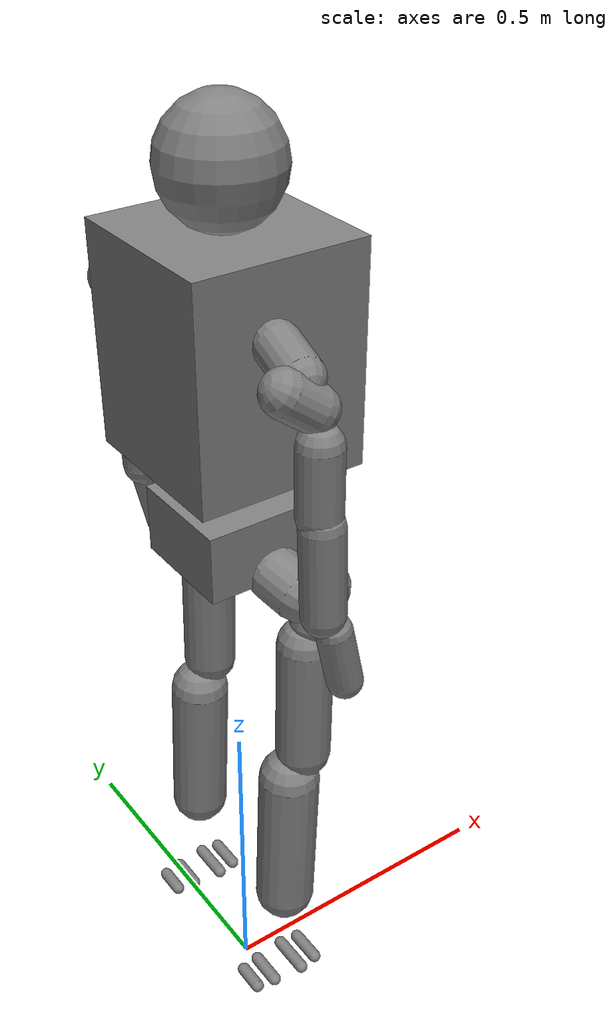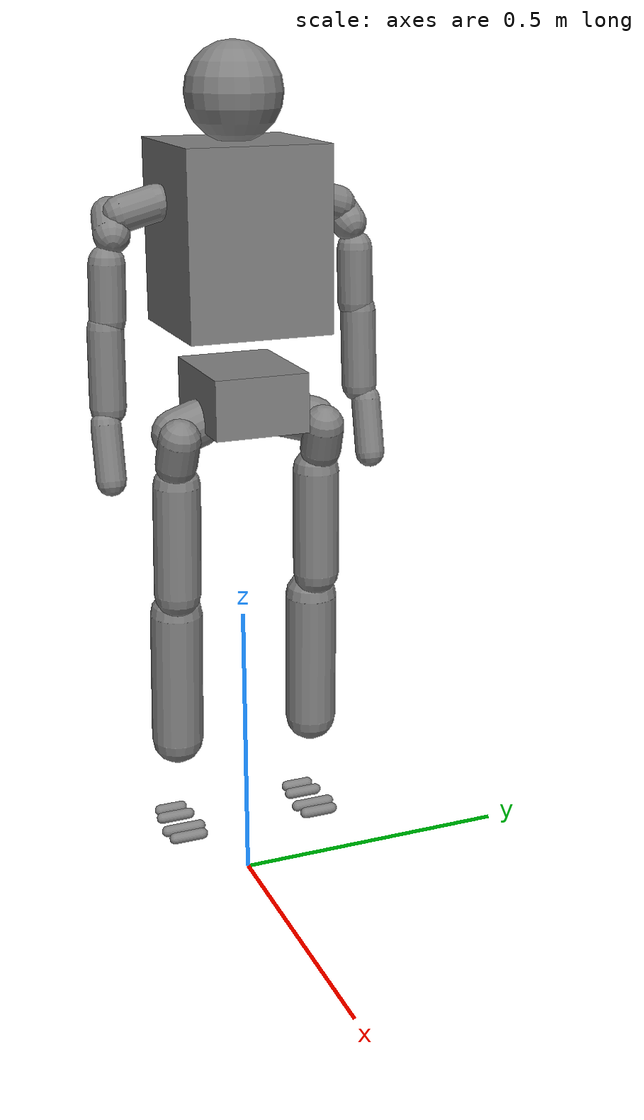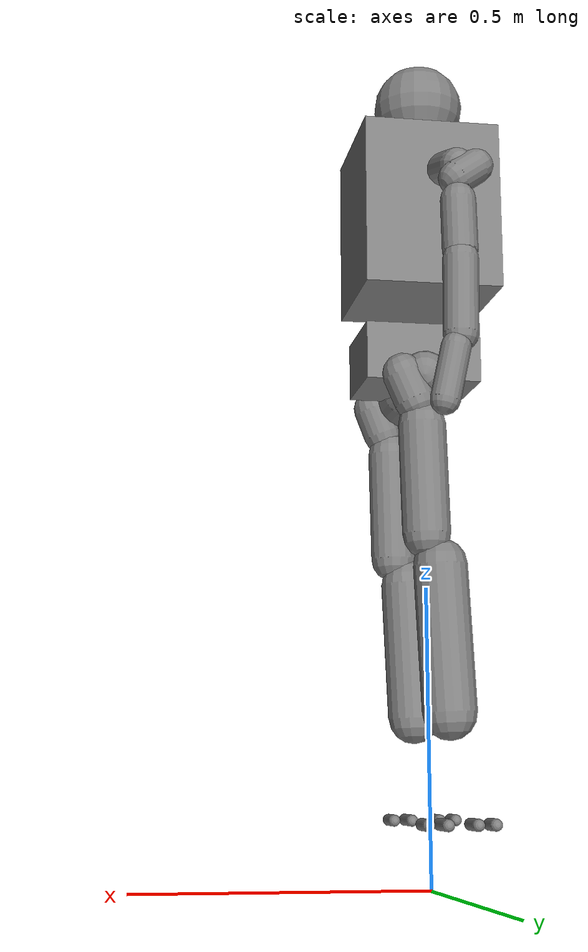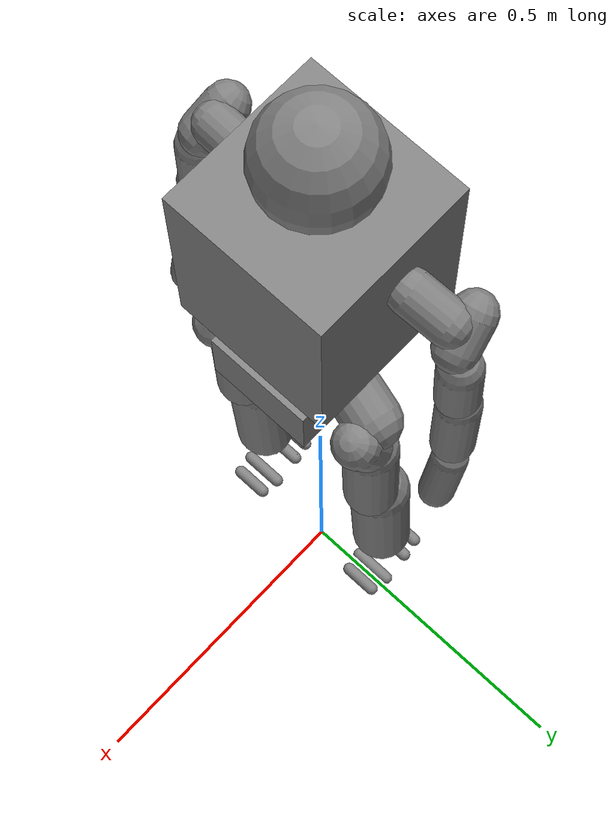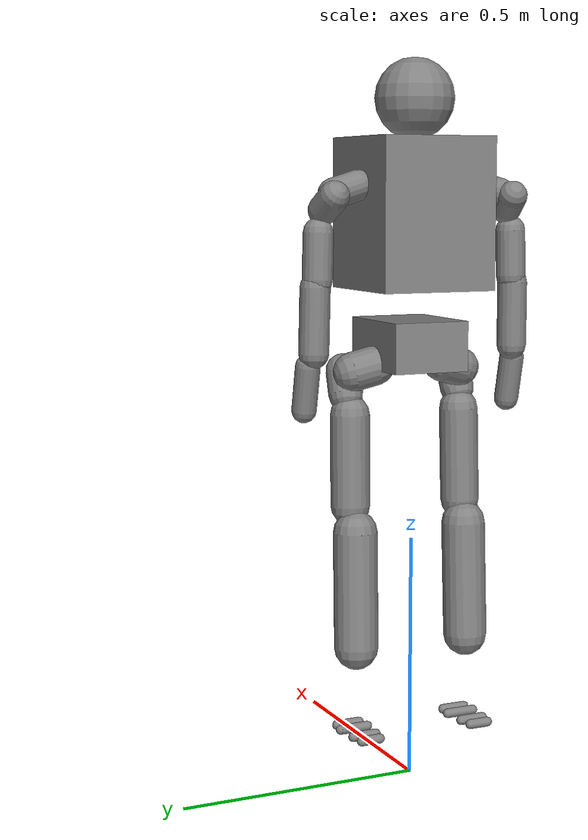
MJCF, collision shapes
<mujoco model="pm01">
  <compiler angle="radian" meshdir="assets"/>
  <default>
    <joint damping="0.05" armature="0.01" frictionloss="0.2"/>
  </default>

  <default>
    <default class="pm01">
      <default class="visual">
        <geom type="mesh" density="0" contype="0" conaffinity="0" group="2"/>
      </default>
      <default class="collision">
        <geom type="capsule" priority="1" condim="6" group="3"/>
        <default class="foot_capsule">
          <geom size="0.01"/>
        </default>
      </default>
      <site rgba="1 0 0 1" group="5"/>
    </default>
  </default>

  <asset>
    <mesh name="link_base" file="link_base.stl"/>
    <mesh name="link_hip_pitch_l" file="link_hip_pitch_l.stl"/>
    <mesh name="link_hip_roll_l" file="link_hip_roll_l.stl"/>
    <mesh name="link_hip_yaw_l" file="link_hip_yaw_l.stl"/>
    <mesh name="link_knee_pitch_l" file="link_knee_pitch_l.stl"/>
    <mesh name="link_ankle_pitch_l" file="link_ankle_pitch_l.stl"/>
    <mesh name="link_ankle_roll_l" file="link_ankle_roll_l.stl"/>
    <mesh name="link_hip_pitch_r" file="link_hip_pitch_r.stl"/>
    <mesh name="link_hip_roll_r" file="link_hip_roll_r.stl"/>
    <mesh name="link_hip_yaw_r" file="link_hip_yaw_r.stl"/>
    <mesh name="link_knee_pitch_r" file="link_knee_pitch_r.stl"/>
    <mesh name="link_ankle_pitch_r" file="link_ankle_pitch_r.stl"/>
    <mesh name="link_ankle_roll_r" file="link_ankle_roll_r.stl"/>
    <mesh name="link_torso_yaw" file="link_torso_yaw.stl"/>
    <mesh name="link_shoulder_pitch_l" file="link_shoulder_pitch_l.stl"/>
    <mesh name="link_shoulder_roll_l" file="link_shoulder_roll_l.stl"/>
    <mesh name="link_shoulder_yaw_l" file="link_shoulder_yaw_l.stl"/>
    <mesh name="link_elbow_pitch_l" file="link_elbow_pitch_l.stl"/>
    <mesh name="link_elbow_yaw_l" file="link_elbow_yaw_l.stl"/>
    <mesh name="link_shoulder_pitch_r" file="link_shoulder_pitch_r.stl"/>
    <mesh name="link_shoulder_roll_r" file="link_shoulder_roll_r.stl"/>
    <mesh name="link_shoulder_yaw_r" file="link_shoulder_yaw_r.stl"/>
    <mesh name="link_elbow_pitch_r" file="link_elbow_pitch_r.stl"/>
    <mesh name="link_elbow_yaw_r" file="link_elbow_yaw_r.stl"/>
    <mesh name="link_head_yaw" file="link_head_yaw.stl"/>
  </asset>

  <worldbody>
    <body name="link_base" pos="0 0 0.92" childclass="pm01">
      <inertial pos="0.01525750 -0.00001621 -0.02333111" mass="4.08640035"
                fullinertia="0.02021593 0.01531282 0.01216285 -0.00000120 -0.00037784 -0.00000295"/>
      <joint name="floating_base_joint" type="free" limited="false" actuatorfrclimited="false"/>
      <geom class="visual" rgba="0.75294 0.75294 0.75294 1" mesh="link_base"/>
      <geom name="link_base_collision" class="collision" type="box" size="0.1 0.08 0.05" pos="0.015 0 -0.02"/>
      <site name="imu" size="0.01" pos="0 0 0"/>

      <!-- ==================== LEFT LEG ==================== -->
      <body name="link_hip_pitch_l" pos="0.01541 0.076141 -0.061208">
        <inertial pos="0.01010860 0.04524604 -0.01196488" mass="1.68628239"
                  fullinertia="0.00230276 0.00202247 0.00220299 0.00006587 -0.00002062 -0.00003966"/>
        <joint name="j00_hip_pitch_l" axis="0 0.96593 -0.25882" range="-3.141 2.443"/>
        <geom class="visual" rgba="0.75294 0.75294 0.75294 1" mesh="link_hip_pitch_l"/>
        <geom name="link_hip_pitch_l_collision" class="collision" type="capsule" size="0.04" fromto="0 0 0 0.01 0.045 -0.012"/>

        <body name="link_hip_roll_l" pos="0.048 0.049359 -0.013226">
          <inertial pos="-0.01861361 0.00234772 -0.04601977" mass="0.63274283"
                    fullinertia="0.00133858 0.00144745 0.00125215 -0.00004643 0.00032023 0.00003062"/>
          <joint name="j01_hip_roll_l" axis="1 0 0" range="-0.436 2.094"/>
          <geom class="visual" rgba="0.75294 0.75294 0.75294 1" mesh="link_hip_roll_l"/>
          <geom name="link_hip_roll_l_collision" class="collision" type="capsule" size="0.035" fromto="0 0 0 -0.019 0.002 -0.046"/>

          <body name="link_hip_yaw_l" pos="-0.03139 -0.0015951 -0.086016">
            <inertial pos="-0.00361155 0.00117239 -0.09310066" mass="1.85800304"
                      fullinertia="0.01637894 0.01626744 0.00343388 -0.00006202 0.00110380 -0.00041393"/>
            <joint name="j02_hip_yaw_l" axis="0 0 1" range="-1.57 4.014"/>
            <geom class="visual" rgba="0.75294 0.75294 0.75294 1" mesh="link_hip_yaw_l"/>
            <geom name="link_hip_yaw_l_collision" class="collision" type="capsule" size="0.04" fromto="0 0 0 -0.004 0.001 -0.186"/>

            <body name="link_knee_pitch_l" pos="-0.02602 -2.8566e-05 -0.23655">
              <inertial pos="-0.00978702 0.00212191 -0.11930917" mass="4.29474062"
                        fullinertia="0.05314257 0.05480624 0.00561043 0.00007471 0.00581909 0.00057095"/>
              <joint name="j03_knee_pitch_l" axis="0 1 0" range="-0.3491 2.3911"/>
              <geom class="visual" rgba="0.75294 0.75294 0.75294 1" mesh="link_knee_pitch_l"/>
              <geom name="link_knee_pitch_l_collision" class="collision" type="capsule" size="0.045" fromto="0 0 0 -0.01 0.002 -0.238"/>

              <body name="link_ankle_pitch_l" pos="-0.026756 0.00041994 -0.36305">
                <inertial pos="0.00126412 0 -0.00661445" mass="0.11534469"
                          fullinertia="0.00001346 0.00001511 0.00001253 0 0.00000113 0"/>
                <joint name="j04_ankle_pitch_l" axis="0 1 0" range="-0.6807 0.7243"/>
                <geom class="visual" rgba="0.75294 0.75294 0.75294 1" mesh="link_ankle_pitch_l"/>

                <body name="link_ankle_roll_l" pos="0 0 -0.015">
                  <inertial pos="0.01456057 0.00000119 -0.02219893" mass="0.71786765"
                            fullinertia="0.00057796 0.00276500 0.00292373 -0.00002888 -0.00014638 -0.00000205"/>
                  <joint name="j05_ankle_roll_l" axis="1 0 0" range="-0.2618 0.2618"/>
                  <geom class="visual" rgba="0.75294 0.75294 0.75294 1" mesh="link_ankle_roll_l"/>
                  <!-- Foot collision capsules -->
                  <geom name="left_foot1_collision" class="foot_capsule" fromto="0.06 0.025 -0.035 0.06 -0.025 -0.035"/>
                  <geom name="left_foot2_collision" class="foot_capsule" fromto="0.03 0.030 -0.035 0.03 -0.030 -0.035"/>
                  <geom name="left_foot3_collision" class="foot_capsule" fromto="-0.02 0.025 -0.035 -0.02 -0.025 -0.035"/>
                  <geom name="left_foot4_collision" class="foot_capsule" fromto="-0.05 0.020 -0.035 -0.05 -0.020 -0.035"/>
                  <site name="left_foot" pos="0.01 0 -0.04" size="0.01"/>
                </body>
              </body>
            </body>
          </body>
        </body>
      </body>

      <!-- ==================== RIGHT LEG ==================== -->
      <body name="link_hip_pitch_r" pos="0.01541 -0.076141 -0.061208">
        <inertial pos="0.01021848 -0.04516729 -0.01221388" mass="1.68024369"
                  fullinertia="0.00229703 0.00202245 0.00218388 -0.00006759 -0.00001661 0.00005508"/>
        <joint name="j06_hip_pitch_r" axis="0 0.96593 0.25882" range="-3.141 2.443"/>
        <geom class="visual" rgba="0.75294 0.75294 0.75294 1" mesh="link_hip_pitch_r"/>
        <geom name="link_hip_pitch_r_collision" class="collision" type="capsule" size="0.04" fromto="0 0 0 0.01 -0.045 -0.012"/>

        <body name="link_hip_roll_r" pos="0.048 -0.04936 -0.013226">
          <inertial pos="-0.01847775 -0.00232999 -0.04573211" mass="0.63673573"
                    fullinertia="0.00134870 0.00145899 0.00125531 0.00004656 0.00032421 -0.00003020"/>
          <joint name="j07_hip_roll_r" axis="1 0 0" range="-2.094 0.436"/>
          <geom class="visual" rgba="0.75294 0.75294 0.75294 1" mesh="link_hip_roll_r"/>
          <geom name="link_hip_roll_r_collision" class="collision" type="capsule" size="0.035" fromto="0 0 0 -0.018 -0.002 -0.046"/>

          <body name="link_hip_yaw_r" pos="-0.03139 0.0015966 -0.086016">
            <inertial pos="-0.00365713 -0.00305643 -0.09626805" mass="1.83146024"
                      fullinertia="0.01612343 0.01601231 0.00336783 0.00005892 0.00108663 0.00037741"/>
            <joint name="j08_hip_yaw_r" axis="0 0 1" range="-4.014 1.57"/>
            <geom class="visual" rgba="0.75294 0.75294 0.75294 1" mesh="link_hip_yaw_r"/>
            <geom name="link_hip_yaw_r_collision" class="collision" type="capsule" size="0.04" fromto="0 0 0 -0.004 -0.003 -0.192"/>

            <body name="link_knee_pitch_r" pos="-0.02602 2.8566e-05 -0.23655">
              <inertial pos="-0.00985503 -0.00214867 -0.11898555" mass="4.29186385"
                        fullinertia="0.05277030 0.05446054 0.00563558 -0.00007617 0.00582343 -0.00054823"/>
              <joint name="j09_knee_pitch_r" axis="0 1 0" range="-0.3491 2.3911"/>
              <geom class="visual" rgba="0.75294 0.75294 0.75294 1" mesh="link_knee_pitch_r"/>
              <geom name="link_knee_pitch_r_collision" class="collision" type="capsule" size="0.045" fromto="0 0 0 -0.01 -0.002 -0.238"/>

              <body name="link_ankle_pitch_r" pos="-0.026756 -0.00041994 -0.36305">
                <inertial pos="0.00073183 0 -0.00669428" mass="0.11534469"
                          fullinertia="0.00001327 0.00001511 0.00001272 0 0.00000119 0"/>
                <joint name="j10_ankle_pitch_r" axis="0 1 0" range="-0.6807 0.7243"/>
                <geom class="visual" rgba="0.75294 0.75294 0.75294 1" mesh="link_ankle_pitch_r"/>

                <body name="link_ankle_roll_r" pos="0 0 -0.015">
                  <inertial pos="0.01470675 0.00001452 -0.02226584" mass="0.71559163"
                            fullinertia="0.00057544 0.00275723 0.00291607 0.00003022 -0.00014346 0.00000194"/>
                  <joint name="j11_ankle_roll_r" axis="1 0 0" range="-0.2618 0.2618"/>
                  <geom class="visual" rgba="0.75294 0.75294 0.75294 1" mesh="link_ankle_roll_r"/>
                  <!-- Foot collision capsules -->
                  <geom name="right_foot1_collision" class="foot_capsule" fromto="0.06 0.025 -0.035 0.06 -0.025 -0.035"/>
                  <geom name="right_foot2_collision" class="foot_capsule" fromto="0.03 0.030 -0.035 0.03 -0.030 -0.035"/>
                  <geom name="right_foot3_collision" class="foot_capsule" fromto="-0.02 0.025 -0.035 -0.02 -0.025 -0.035"/>
                  <geom name="right_foot4_collision" class="foot_capsule" fromto="-0.05 0.020 -0.035 -0.05 -0.020 -0.035"/>
                  <site name="right_foot" pos="0.01 0 -0.04" size="0.01"/>
                </body>
              </body>
            </body>
          </body>
        </body>
      </body>

      <!-- ==================== TORSO / WAIST ==================== -->
      <body name="link_torso_yaw" pos="0.01216 0 0.0809">
        <inertial pos="-0.01140718 -0.00348592 0.16283761" mass="9.01442210"
                  fullinertia="0.08499169 0.06564210 0.05757680 -0.00035130 -0.00487771 -0.00043579"/>
        <joint name="j12_waist_yaw" axis="0 0 1" range="-4.014 1.57"/>
        <geom class="visual" rgba="0.75294 0.75294 0.75294 1" mesh="link_torso_yaw"/>
        <geom name="link_torso_yaw_collision" class="collision" type="box" size="0.12 0.12 0.15" pos="-0.01 0 0.16"/>

        <!-- ==================== LEFT ARM ==================== -->
        <body name="link_shoulder_pitch_l" pos="-0.027105 0.12916 0.21549">
          <inertial pos="-0.00687390 0.05624677 -0.01564153" mass="0.93215458"
                    fullinertia="0.00123482 0.00072034 0.00100386 -0.00005768 0.00002372 -0.00018994"/>
          <joint name="j13_shoulder_pitch_l" axis="0 0.99803 0.062791" range="-2.9671 2.7925"/>
          <geom class="visual" rgba="0.75294 0.75294 0.75294 1" mesh="link_shoulder_pitch_l"/>
          <geom name="link_shoulder_pitch_l_collision" class="collision" type="capsule" size="0.03" fromto="0 0 0 -0.007 0.056 -0.016"/>

          <body name="link_shoulder_roll_l" pos="-0.0371 0.066941 -0.020838">
            <inertial pos="0.03741198 0.00677175 -0.02678007" mass="0.51081280"
                      fullinertia="0.00099276 0.00129412 0.00093889 -0.00000156 0.00000333 -0.00012129"/>
            <joint name="j14_shoulder_roll_l" axis="1 0 0" range="-0.6108 2.3562"/>
            <geom class="visual" rgba="0.75294 0.75294 0.75294 1" mesh="link_shoulder_roll_l"/>
            <geom name="link_shoulder_roll_l_collision" class="collision" type="capsule" size="0.03" fromto="0 0 0 0.037 0.007 -0.027"/>

            <body name="link_shoulder_yaw_l" pos="0.0371 0.017645 -0.070132">
              <inertial pos="-0.00084545 0.00219391 -0.04566495" mass="0.90913792"
                        fullinertia="0.00162163 0.00150870 0.00078740 0.00000177 0.00000997 -0.00001196"/>
              <joint name="j15_shoulder_yaw_l" axis="0 -0.062803 0.99803" range="-2.618 2.618"/>
              <geom class="visual" rgba="0.75294 0.75294 0.75294 1" mesh="link_shoulder_yaw_l"/>
              <geom name="link_shoulder_yaw_l_collision" class="collision" type="capsule" size="0.03" fromto="0 0 0 -0.001 0.002 -0.091"/>

              <body name="link_elbow_pitch_l" pos="0 0.0065994 -0.10487">
                <inertial pos="0.00298237 0.00186711 -0.06518459" mass="1.38061447"
                          fullinertia="0.00588024 0.00593736 0.00083553 0.00002816 -0.00030012 -0.00046397"/>
                <joint name="j16_elbow_pitch_l" axis="0.0027243 0.99802 0.062803" range="-2.1948 0.7374"/>
                <geom class="visual" rgba="0.75294 0.75294 0.75294 1" mesh="link_elbow_pitch_l"/>
                <geom name="link_elbow_pitch_l_collision" class="collision" type="capsule" size="0.03" fromto="0 0 0 0.003 0.002 -0.130"/>

                <body name="link_elbow_yaw_l" pos="0.013817 0.0097723 -0.1547">
                  <inertial pos="0.02016404 0.00026082 -0.08990721" mass="0.46651916"
                            fullinertia="0.00167348 0.00173094 0.00039325 0.00000913 0.00030658 -0.00004087"/>
                  <joint name="j17_elbow_yaw_l" axis="-0.21479 -0.061921 0.9747" range="-2.618 2.618"/>
                  <geom class="visual" rgba="0.75294 0.75294 0.75294 1" mesh="link_elbow_yaw_l"/>
                  <geom name="link_elbow_yaw_l_collision" class="collision" type="capsule" size="0.025" fromto="0 0 0 0.02 0 -0.09"/>
                </body>
              </body>
            </body>
          </body>
        </body>

        <!-- ==================== RIGHT ARM ==================== -->
        <body name="link_shoulder_pitch_r" pos="-0.027105 -0.12916 0.21549">
          <inertial pos="-0.00682535 -0.05628532 -0.01567159" mass="0.92914080"
                    fullinertia="0.00123547 0.00071785 0.00100508 0.00005830 0.00002503 0.00018920"/>
          <joint name="j18_shoulder_pitch_r" axis="0 0.99803 -0.062791" range="-2.9671 2.7925"/>
          <geom class="visual" rgba="0.75294 0.75294 0.75294 1" mesh="link_shoulder_pitch_r"/>
          <geom name="link_shoulder_pitch_r_collision" class="collision" type="capsule" size="0.03" fromto="0 0 0 -0.007 -0.056 -0.016"/>

          <body name="link_shoulder_roll_r" pos="-0.0371 -0.066941 -0.020838">
            <inertial pos="0.03745836 -0.00675724 -0.02671114" mass="0.50967809"
                      fullinertia="0.00099158 0.00129182 0.00093761 0.00000134 0.00000304 0.00012106"/>
            <joint name="j19_shoulder_roll_r" axis="1 0 0" range="-2.3562 0.6108"/>
            <geom class="visual" rgba="0.75294 0.75294 0.75294 1" mesh="link_shoulder_roll_r"/>
            <geom name="link_shoulder_roll_r_collision" class="collision" type="capsule" size="0.03" fromto="0 0 0 0.037 -0.007 -0.027"/>

            <body name="link_shoulder_yaw_r" pos="0.0371 -0.017644 -0.070132">
              <inertial pos="-0.00081742 -0.00217677 -0.04566906" mass="0.90851688"
                        fullinertia="0.00162102 0.00150799 0.00078668 -0.00000094 0.00001055 0.00001216"/>
              <joint name="j20_shoulder_yaw_r" axis="0 0.062791 0.99803" range="-2.618 2.618"/>
              <geom class="visual" rgba="0.75294 0.75294 0.75294 1" mesh="link_shoulder_yaw_r"/>
              <geom name="link_shoulder_yaw_r_collision" class="collision" type="capsule" size="0.03" fromto="0 0 0 -0.001 -0.002 -0.091"/>

              <body name="link_elbow_pitch_r" pos="0 -0.006598 -0.10487">
                <inertial pos="0.00302244 -0.00191447 -0.06521149" mass="1.38162913"
                          fullinertia="0.00587907 0.00593696 0.00083539 -0.00002756 -0.00029909 0.00046493"/>
                <joint name="j21_elbow_pitch_r" axis="0.0027243 0.99802 -0.06279" range="-2.1948 0.7374"/>
                <geom class="visual" rgba="0.75294 0.75294 0.75294 1" mesh="link_elbow_pitch_r"/>
                <geom name="link_elbow_pitch_r_collision" class="collision" type="capsule" size="0.03" fromto="0 0 0 0.003 -0.002 -0.130"/>

                <body name="link_elbow_yaw_r" pos="0.013817 -0.0097704 -0.1547">
                  <inertial pos="0.02021657 -0.00026434 -0.08993096" mass="0.46648073"
                            fullinertia="0.00167086 0.00172726 0.00039220 -0.00000942 0.00030396 0.00004086"/>
                  <joint name="j22_elbow_yaw_r" axis="-0.21479 0.061909 0.9747" range="-2.618 2.618"/>
                  <geom class="visual" rgba="0.75294 0.75294 0.75294 1" mesh="link_elbow_yaw_r"/>
                  <geom name="link_elbow_yaw_r_collision" class="collision" type="capsule" size="0.025" fromto="0 0 0 0.02 0 -0.09"/>
                </body>
              </body>
            </body>
          </body>
        </body>

        <!-- ==================== HEAD ==================== -->
        <body name="link_head_yaw" pos="-0.017638 0 0.2961">
          <inertial pos="0.00358213 0.00030109 0.08822633" mass="0.84510036"
                    fullinertia="0.00428261 0.00500542 0.00313801 0.00000647 -0.00048256 -0.00000033"/>
          <joint name="j23_head_yaw" axis="0 0 1" range="-0.6109 0.6109"/>
          <geom class="visual" rgba="0.75294 0.75294 0.75294 1" mesh="link_head_yaw"/>
          <geom name="link_head_yaw_collision" class="collision" type="sphere" size="0.08" pos="0.004 0 0.088"/>
        </body>
      </body>
    </body>
  </worldbody>

  <keyframe>
    <key name="home" qpos="0 0 0.92 1 0 0 0
      -0.24 0 0 0.48 -0.24 0
      -0.24 0 0 0.48 -0.24 0
      0
      0.35 0.25 0 -0.7 0
      0.35 -0.25 0 -0.7 0
      0"/>
  </keyframe>

  <sensor>
    <gyro name="imu_ang_vel" site="imu"/>
    <velocimeter name="imu_lin_vel" site="imu"/>
    <accelerometer name="imu_lin_acc" site="imu"/>
    <subtreeangmom name="root_angmom" body="link_base"/>
  </sensor>
</mujoco>
